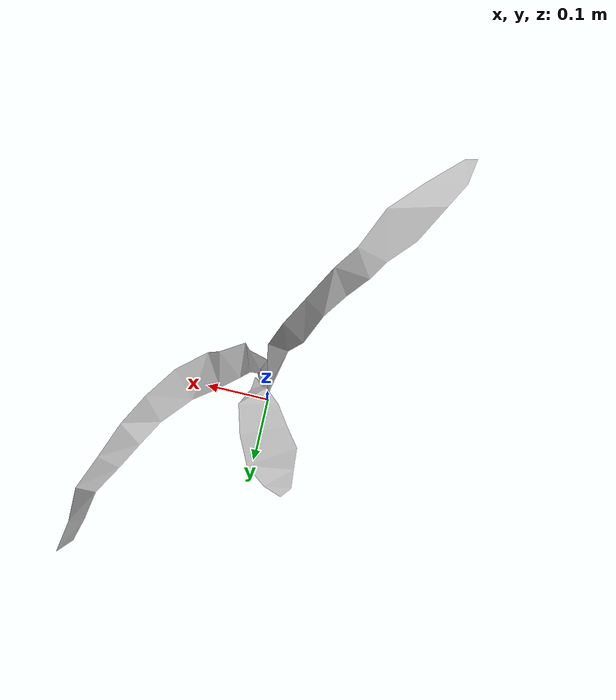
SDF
<?xml version="1.0" ?>
<sdf version="1.6">
  <model name='nettle'>
    <pose frame=''>0 0 0.05 0 -0 0</pose>
    <link name='nettle_link'>
      <inertial>
        <pose>0 0 0.01 0 0 0</pose>
        <mass>0.3</mass>
        <inertia>
          <ixx>0.0033416667</ixx>
          <ixy>0</ixy>
          <ixz>0</ixz>
          <iyy>0.0033416667</iyy>
          <iyz>0</iyz>
          <izz>0.000016666667</izz>
        </inertia>
        <pose>0 0 0.1 0 0 0</pose>
      </inertial>
      <collision name='collision'>
        <pose>0 0 0.2 0 -0 0</pose>
        <geometry>
          <box>
            <size>0.02 0.02 0.4</size>
          </box>
        </geometry>
        <max_contacts>10</max_contacts>
        <surface>
          <contact>
            <ode/>
          </contact>
          <bounce/>
          <friction>
            <ode>
              <mu>10</mu>
              <mu2>10</mu2>
            </ode>
          </friction>
        </surface>
      </collision>
      <visual name='visual'>
        <geometry>
          <mesh>
            <uri>model://nettle/meshes/nettle.dae</uri>
            <scale>0.683166466464586 0.683166466464586 0.683166466464586</scale>
          </mesh>
        </geometry>
      </visual>
      <self_collide>0</self_collide>
      <enable_wind>0</enable_wind>
      <kinematic>0</kinematic>
    </link>
  </model>

  <sensor name="gps" type="gps">
  <update_rate>30.0</update_rate>
  <plugin name="gps_plugin" filename="libgazebo_ros_gps.so">
    <ros>
      <namespace>/</namespace>
      <remapping>fix:=/gps_block/fix</remapping>
    </ros>
    <horz-err>0.2</horz-err>
    <vert-err>0.4</vert-err>
    <gps_reference_frame>world</gps_reference_frame>
  </plugin>
</sensor>

</sdf>
